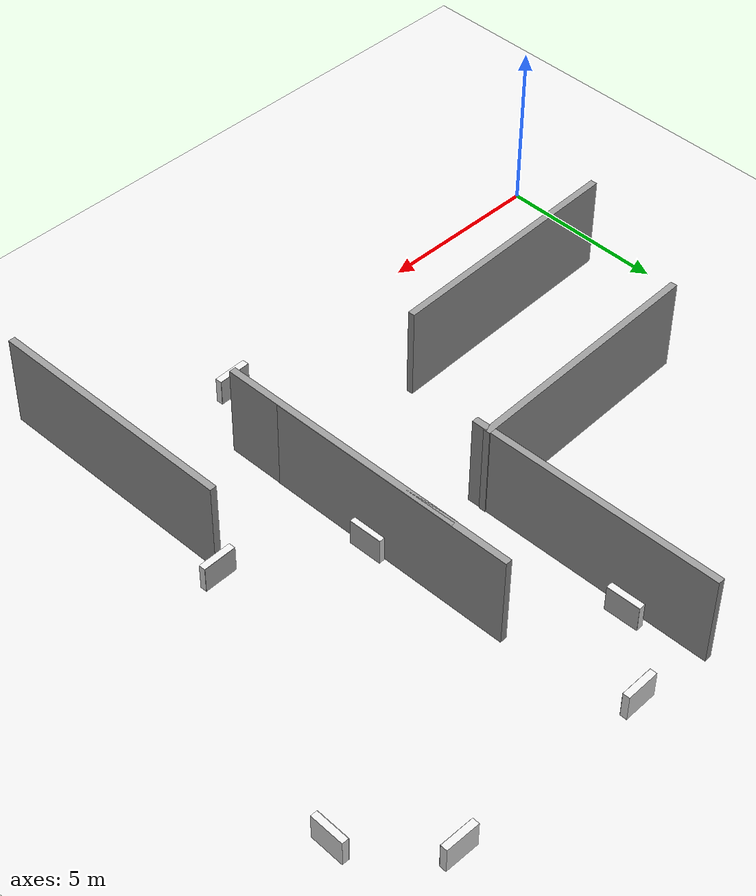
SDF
<sdf version="1.7">
 <world name="default">
  <model name="ground_plane">
   <static>1</static>
   <link name="link">
    <collision name="collision">
     <geometry><plane><normal>0 0 1</normal><size>100 100</size></plane></geometry>
     <surface><friction><ode><mu>100</mu><mu2>50</mu2></ode></friction></surface>
    </collision>
    <visual name="visual">
     <cast_shadows>0</cast_shadows>
     <geometry><plane><normal>0 0 1</normal><size>100 100</size></plane></geometry>
     <material>
      <script><uri>file://media/materials/scripts/gazebo.material</uri><name>Gazebo/White</name></script>
     </material>
    </visual>
   </link>
  </model>
  <model name="grey_wall_clone_clone_clone_0_clone_0">
   <static>1</static>
   <link name="link">
    <pose>0 0 1.4 0 -0 0.1</pose>
    <collision name="collision"><geometry><box><size>7.5 0.2 2.8</size></box></geometry></collision>
    <visual name="visual">
     <cast_shadows>0</cast_shadows>
     <geometry><box><size>7.5 0.2 2.8</size></box></geometry>
     <material>
      <script>
       <uri>model://grey_wall/materials/scripts</uri>
       <uri>model://grey_wall/materials/textures</uri>
       <name>vrc/grey_wall</name>
      </script>
     </material>
    </visual>
   </link>
   <pose>16.1502 0.986887 0.1 0 0 -1.64658</pose>
  </model>
  <model name="grey_wall_clone_clone_clone_0_clone_1">
   <static>1</static>
   <link name="link">
    <pose>0 0 1.4 0 -0 0.1</pose>
    <collision name="collision"><geometry><box><size>7.5 0.2 2.8</size></box></geometry></collision>
    <visual name="visual">
     <cast_shadows>0</cast_shadows>
     <geometry><box><size>7.5 0.2 2.8</size></box></geometry>
     <material>
      <script>
       <uri>model://grey_wall/materials/scripts</uri>
       <uri>model://grey_wall/materials/textures</uri>
       <name>vrc/grey_wall</name>
      </script>
     </material>
    </visual>
   </link>
   <pose>12.9051 5.75959 0.1 0 0 -1.64658</pose>
  </model>
  <model name="grey_wall_clone_2">
   <static>1</static>
   <link name="link">
    <pose>0 0 1.4 0 -0 0.1</pose>
    <collision name="collision"><geometry><box><size>7.5 0.2 2.8</size></box></geometry></collision>
    <visual name="visual">
     <cast_shadows>0</cast_shadows>
     <geometry><box><size>7.5 0.2 2.8</size></box></geometry>
     <material>
      <script>
       <uri>model://grey_wall/materials/scripts</uri>
       <uri>model://grey_wall/materials/textures</uri>
       <name>vrc/grey_wall</name>
      </script>
     </material>
    </visual>
   </link>
   <pose>6.31492 7.83301 0.1 0 0 -0.062574</pose>
  </model>
  <model name="grey_wall_clone_3">
   <static>1</static>
   <link name="link">
    <pose>0 0 1.4 0 -0 0.1</pose>
    <collision name="collision"><geometry><box><size>7.5 0.2 2.8</size></box></geometry></collision>
    <visual name="visual">
     <cast_shadows>0</cast_shadows>
     <geometry><box><size>7.5 0.2 2.8</size></box></geometry>
     <material>
      <script>
       <uri>model://grey_wall/materials/scripts</uri>
       <uri>model://grey_wall/materials/textures</uri>
       <name>vrc/grey_wall</name>
      </script>
     </material>
    </visual>
   </link>
   <pose>4.56276 3.55513 0.1 0 0 -0.062574</pose>
  </model>
  <model name="grey_wall_clone_clone_clone_0_clone_clone">
   <static>1</static>
   <link name="link">
    <pose>0 0 1.4 0 -0 0.1</pose>
    <collision name="collision"><geometry><box><size>7.5 0.2 2.8</size></box></geometry></collision>
    <visual name="visual">
     <cast_shadows>0</cast_shadows>
     <geometry><box><size>7.5 0.2 2.8</size></box></geometry>
     <material>
      <script>
       <uri>model://grey_wall/materials/scripts</uri>
       <uri>model://grey_wall/materials/textures</uri>
       <name>vrc/grey_wall</name>
      </script>
     </material>
    </visual>
   </link>
   <pose>9.85606 11.2329 0.1 0 0 -1.64658</pose>
  </model>
  <model name="left_dir_sign_clone">
   <static>1</static>
   <pose>17.8614 14.5776 0.45 0 -0 1.55884</pose>
   <link name="link">
    <inertial>
     <mass>1</mass>
     <inertia>
      <ixx>0.166667</ixx>
      <ixy>0</ixy>
      <ixz>0</ixz>
      <iyy>0.166667</iyy>
      <iyz>0</iyz>
      <izz>0.166667</izz>
     </inertia>
    </inertial>
    <collision name="collision"><geometry><box><size>0.2 1 0.8</size></box></geometry></collision>
    <visual name="visual_body">
     <geometry><box><size>0.2 1 0.8</size></box></geometry>
     <material>
      <script><name>Gazebo/White</name><uri>file://media/materials/scripts/gazebo.material</uri></script>
     </material>
    </visual>
    <visual name="front_face">
     <geometry><box><size>0.01 1 0.8</size></box></geometry>
     <material>
      <script><uri>model://arrow_detection/worlds/map_1_materials</uri><name>right/Diffuse</name></script>
     </material>
     <pose>-0.101 0 0 3.14 -0 0</pose>
    </visual>
   </link>
  </model>
  <model name="left_dir_sign_clone_clone">
   <static>1</static>
   <pose>10.1773 12.7252 0.45 0 0 -3.11001</pose>
   <link name="link">
    <inertial>
     <mass>1</mass>
     <inertia>
      <ixx>0.166667</ixx>
      <ixy>0</ixy>
      <ixz>0</ixz>
      <iyy>0.166667</iyy>
      <iyz>0</iyz>
      <izz>0.166667</izz>
     </inertia>
    </inertial>
    <collision name="collision"><geometry><box><size>0.2 1 0.8</size></box></geometry></collision>
    <visual name="visual_body">
     <geometry><box><size>0.2 1 0.8</size></box></geometry>
     <material>
      <script><name>Gazebo/White</name><uri>file://media/materials/scripts/gazebo.material</uri></script>
     </material>
    </visual>
    <visual name="front_face">
     <geometry><box><size>0.01 1 0.8</size></box></geometry>
     <material>
      <script><uri>model://arrow_detection/worlds/map_1_materials</uri><name>right/Diffuse</name></script>
     </material>
     <pose>-0.101 0 0 3.14 -0 0</pose>
    </visual>
   </link>
  </model>
  <model name="right_dir_sign_clone">
   <static>1</static>
   <pose>11.6583 0.390068 0.45 0 0 -1.53391</pose>
   <link name="link">
    <inertial>
     <mass>1</mass>
     <inertia>
      <ixx>0.166667</ixx>
      <ixy>0</ixy>
      <ixz>0</ixz>
      <iyy>0.166667</iyy>
      <iyz>0</iyz>
      <izz>0.166667</izz>
     </inertia>
    </inertial>
    <collision name="collision"><geometry><box><size>0.2 1 0.8</size></box></geometry></collision>
    <visual name="visual_body">
     <geometry><box><size>0.2 1 0.8</size></box></geometry>
     <material>
      <script><name>Gazebo/White</name><uri>file://media/materials/scripts/gazebo.material</uri></script>
     </material>
    </visual>
    <visual name="front_face">
     <geometry><box><size>0.01 1 0.8</size></box></geometry>
     <material>
      <script><uri>model://arrow_detection/worlds/map_1_materials</uri><name>right/Diffuse</name></script>
     </material>
     <pose>-0.101 0 0 0 -0 0</pose>
    </visual>
   </link>
  </model>
  <model name="right_dir_sign_clone_1">
   <static>1</static>
   <pose>11.9605 14.6593 0.45 0 -0 1.59263</pose>
   <link name="link">
    <inertial>
     <mass>1</mass>
     <inertia>
      <ixx>0.166667</ixx>
      <ixy>0</ixy>
      <ixz>0</ixz>
      <iyy>0.166667</iyy>
      <iyz>0</iyz>
      <izz>0.166667</izz>
     </inertia>
    </inertial>
    <collision name="collision"><geometry><box><size>0.2 1 0.8</size></box></geometry></collision>
    <visual name="visual_body">
     <geometry><box><size>0.2 1 0.8</size></box></geometry>
     <material>
      <script><name>Gazebo/White</name><uri>file://media/materials/scripts/gazebo.material</uri></script>
     </material>
    </visual>
    <visual name="front_face">
     <geometry><box><size>0.01 1 0.8</size></box></geometry>
     <material>
      <script><uri>model://arrow_detection/worlds/map_1_materials</uri><name>right/Diffuse</name></script>
     </material>
     <pose>-0.101 0 0 0 -0 0</pose>
    </visual>
   </link>
  </model>
  <model name="right_dir_sign_clone_1_clone">
   <static>1</static>
   <pose>19.7339 12.477 0.45 0 0 -0.011074</pose>
   <link name="link">
    <inertial>
     <mass>1</mass>
     <inertia>
      <ixx>0.166667</ixx>
      <ixy>0</ixy>
      <ixz>0</ixz>
      <iyy>0.166667</iyy>
      <iyz>0</iyz>
      <izz>0.166667</izz>
     </inertia>
    </inertial>
    <collision name="collision"><geometry><box><size>0.2 1 0.8</size></box></geometry></collision>
    <visual name="visual_body">
     <geometry><box><size>0.2 1 0.8</size></box></geometry>
     <material>
      <script><name>Gazebo/White</name><uri>file://media/materials/scripts/gazebo.material</uri></script>
     </material>
    </visual>
    <visual name="front_face">
     <geometry><box><size>0.01 1 0.8</size></box></geometry>
     <material>
      <script><uri>model://arrow_detection/worlds/map_1_materials</uri><name>right/Diffuse</name></script>
     </material>
     <pose>-0.101 0 0 0 -0 0</pose>
    </visual>
   </link>
  </model>
  <model name="right_dir_sign_clone_1_clone_0">
   <static>1</static>
   <pose>16.2874 4.98026 0.45 0 0 -1.54855</pose>
   <link name="link">
    <inertial>
     <mass>1</mass>
     <inertia>
      <ixx>0.166667</ixx>
      <ixy>0</ixy>
      <ixz>0</ixz>
      <iyy>0.166667</iyy>
      <iyz>0</iyz>
      <izz>0.166667</izz>
     </inertia>
    </inertial>
    <collision name="collision"><geometry><box><size>0.2 1 0.8</size></box></geometry></collision>
    <visual name="visual_body">
     <geometry><box><size>0.2 1 0.8</size></box></geometry>
     <material>
      <script><name>Gazebo/White</name><uri>file://media/materials/scripts/gazebo.material</uri></script>
     </material>
    </visual>
    <visual name="front_face">
     <geometry><box><size>0.01 1 0.8</size></box></geometry>
     <material>
      <script><uri>model://arrow_detection/worlds/map_1_materials</uri><name>right/Diffuse</name></script>
     </material>
     <pose>-0.101 0 0 0 -0 0</pose>
    </visual>
   </link>
  </model>
  <model name="left_dir_sign_clone_clone_clone_0">
   <static>1</static>
   <pose>13.0512 6.90024 0.45 0 0 -3.11001</pose>
   <link name="link">
    <inertial>
     <mass>1</mass>
     <inertia>
      <ixx>0.166667</ixx>
      <ixy>0</ixy>
      <ixz>0</ixz>
      <iyy>0.166667</iyy>
      <iyz>0</iyz>
      <izz>0.166667</izz>
     </inertia>
    </inertial>
    <collision name="collision"><geometry><box><size>0.2 1 0.8</size></box></geometry></collision>
    <visual name="visual_body">
     <geometry><box><size>0.2 1 0.8</size></box></geometry>
     <material>
      <script><name>Gazebo/White</name><uri>file://media/materials/scripts/gazebo.material</uri></script>
     </material>
    </visual>
    <visual name="front_face">
     <geometry><box><size>0.01 1 0.8</size></box></geometry>
     <material>
      <script><uri>model://arrow_detection/worlds/map_1_materials</uri><name>right/Diffuse</name></script>
     </material>
     <pose>-0.101 0 0 3.14 -0 0</pose>
    </visual>
   </link>
  </model>
  <model name="grey_wall_clone_clone_clone_0_clone_1_clone">
   <static>1</static>
   <link name="link">
    <pose>0 0 1.4 0 -0 0.1</pose>
    <collision name="collision"><geometry><box><size>7.5 0.2 2.8</size></box></geometry></collision>
    <visual name="visual">
     <cast_shadows>0</cast_shadows>
     <geometry><box><size>7.5 0.2 2.8</size></box></geometry>
     <material>
      <script>
       <uri>model://grey_wall/materials/scripts</uri>
       <uri>model://grey_wall/materials/textures</uri>
       <name>vrc/grey_wall</name>
      </script>
     </material>
    </visual>
   </link>
   <pose>12.8716 7.46494 0.1 0 0 -1.64658</pose>
  </model>
 </world>
</sdf>
